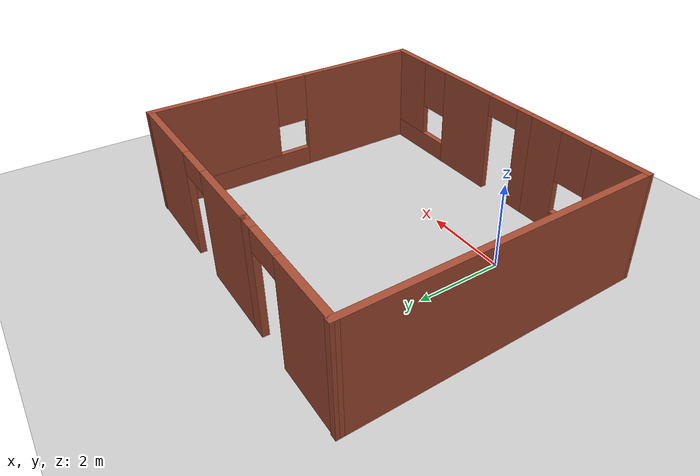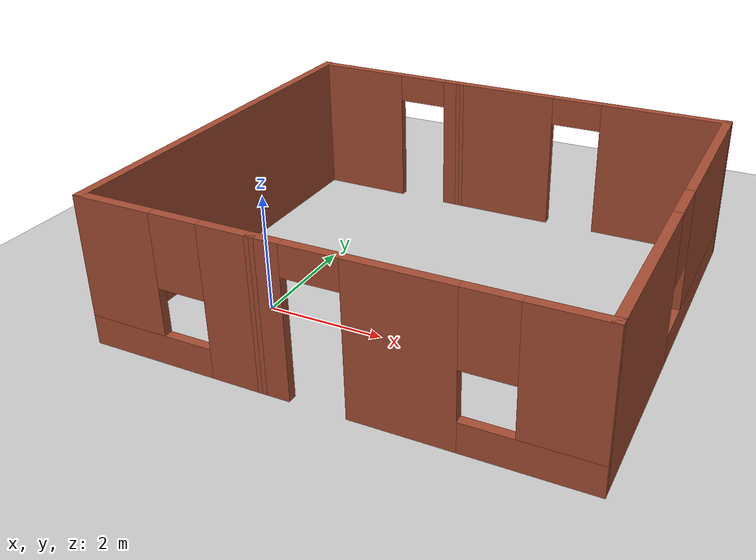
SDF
<sdf version="1.7">
 <world name="default">
  <light name="sun" type="directional">
   <pose>0 0 10 0 -0 0</pose>
   <diffuse>0.8 0.8 0.8 1</diffuse>
   <specular>0.2 0.2 0.2 1</specular>
   <attenuation>
    <range>1000</range>
    <constant>0.9</constant>
    <linear>0.01</linear>
    <quadratic>0.001</quadratic>
   </attenuation>
   <direction>-0.5 0.1 -0.9</direction>
   <spot><inner_angle>0</inner_angle><outer_angle>0</outer_angle><falloff>0</falloff></spot>
  </light>
  <model name="ground_plane">
   <static>1</static>
   <link name="link">
    <collision name="collision">
     <geometry><plane><normal>0 0 1</normal><size>100 100</size></plane></geometry>
     <surface>
      <contact><collide_bitmask>65535</collide_bitmask></contact>
      <friction><ode><mu>100</mu><mu2>50</mu2></ode></friction>
     </surface>
    </collision>
    <visual name="visual">
     <cast_shadows>0</cast_shadows>
     <geometry><plane><normal>0 0 1</normal><size>100 100</size></plane></geometry>
     <material>
      <script><uri>file://media/materials/scripts/gazebo.material</uri><name>Gazebo/Grey</name></script>
     </material>
    </visual>
   </link>
  </model>
  <gravity>0 0 -9.8</gravity>
  <magnetic_field>6e-06 2.3e-05 -4.2e-05</magnetic_field>
  <atmosphere type="adiabatic"/>
  <physics type="ode">
   <max_step_size>0.001</max_step_size>
   <real_time_factor>1</real_time_factor>
   <real_time_update_rate>1000</real_time_update_rate>
  </physics>
  <scene><ambient>0.4 0.4 0.4 1</ambient><background>0.7 0.7 0.7 1</background><shadows>1</shadows></scene>
  <audio><device>default</device></audio>
  <spherical_coordinates>
   <surface_model>EARTH_WGS84</surface_model>
   <latitude_deg>0</latitude_deg>
   <longitude_deg>0</longitude_deg>
   <elevation>0</elevation>
   <heading_deg>0</heading_deg>
  </spherical_coordinates>
  <light name="user_directional_light_0" type="directional">
   <pose>6.40994 6.29295 1 0 -0 0</pose>
   <diffuse>0.5 0.5 0.5 1</diffuse>
   <specular>0.1 0.1 0.1 1</specular>
   <direction>0.1 0.1 -0.9</direction>
   <attenuation>
    <range>20</range>
    <constant>0.5</constant>
    <linear>0.01</linear>
    <quadratic>0.001</quadratic>
   </attenuation>
   <spot><inner_angle>0</inner_angle><outer_angle>0</outer_angle><falloff>0</falloff></spot>
  </light>
  <light name="user_directional_light_1" type="directional">
   <pose>6.42464 6.4272 1 0 -0 0</pose>
   <diffuse>0.5 0.5 0.5 1</diffuse>
   <specular>0.1 0.1 0.1 1</specular>
   <direction>0.1 0.1 -0.9</direction>
   <attenuation>
    <range>20</range>
    <constant>0.5</constant>
    <linear>0.01</linear>
    <quadratic>0.001</quadratic>
   </attenuation>
   <spot><inner_angle>0</inner_angle><outer_angle>0</outer_angle><falloff>0</falloff></spot>
  </light>
  <light name="user_directional_light_2" type="directional">
   <pose>6.43772 6.4534 1 0 -0 0</pose>
   <diffuse>0.5 0.5 0.5 1</diffuse>
   <specular>0.1 0.1 0.1 1</specular>
   <direction>0.1 0.1 -0.9</direction>
   <attenuation>
    <range>20</range>
    <constant>0.5</constant>
    <linear>0.01</linear>
    <quadratic>0.001</quadratic>
   </attenuation>
   <spot><inner_angle>0</inner_angle><outer_angle>0</outer_angle><falloff>0</falloff></spot>
  </light>
  <model name="bulding1">
   <pose>2.1585 1.5294 0 0 -0 1.57205</pose>
   <link name="Wall_0">
    <pose>-3.44272 -1.46402 0 0 -0 -1.56993</pose>
    <visual name="Wall_0_Visual_0">
     <pose>-2.2636 0 1.25 0 -0 0</pose>
     <geometry><box><size>0.520091 0.15 2.5</size></box></geometry>
     <material>
      <script><uri>file://media/materials/scripts/gazebo.material</uri><name>Gazebo/Bricks</name></script>
      <ambient>1 1 1 1</ambient>
     </material>
     <meta><layer>0</layer></meta>
    </visual>
    <collision name="Wall_0_Collision_0">
     <geometry><box><size>0.520091 0.15 2.5</size></box></geometry>
     <pose>-2.2636 0 1.25 0 -0 0</pose>
    </collision>
    <visual name="Wall_0_Visual_1">
     <pose>-0.28602 0 1.25 0 -0 0</pose>
     <geometry><box><size>1.63507 0.15 2.5</size></box></geometry>
     <material>
      <script><uri>file://media/materials/scripts/gazebo.material</uri><name>Gazebo/Bricks</name></script>
      <ambient>1 1 1 1</ambient>
     </material>
     <meta><layer>0</layer></meta>
    </visual>
    <collision name="Wall_0_Collision_1">
     <geometry><box><size>1.63507 0.15 2.5</size></box></geometry>
     <pose>-0.28602 0 1.25 0 -0 0</pose>
    </collision>
    <visual name="Wall_0_Visual_2">
     <pose>1.52758 0 0.25 0 -0 0</pose>
     <geometry><box><size>1.99213 0.15 0.5</size></box></geometry>
     <material>
      <script><uri>file://media/materials/scripts/gazebo.material</uri><name>Gazebo/Bricks</name></script>
      <ambient>1 1 1 1</ambient>
     </material>
     <meta><layer>0</layer></meta>
    </visual>
    <collision name="Wall_0_Collision_2">
     <geometry><box><size>1.99213 0.15 0.5</size></box></geometry>
     <pose>1.52758 0 0.25 0 -0 0</pose>
    </collision>
    <visual name="Wall_0_Visual_3">
     <pose>1.92758 0 1.5 0 -0 0</pose>
     <geometry><box><size>1.19213 0.15 2</size></box></geometry>
     <material>
      <script><uri>file://media/materials/scripts/gazebo.material</uri><name>Gazebo/Bricks</name></script>
      <ambient>1 1 1 1</ambient>
     </material>
     <meta><layer>0</layer></meta>
    </visual>
    <collision name="Wall_0_Collision_3">
     <geometry><box><size>1.19213 0.15 2</size></box></geometry>
     <pose>1.92758 0 1.5 0 -0 0</pose>
    </collision>
    <visual name="Wall_0_Visual_4">
     <pose>0.931514 0 1.9 0 -0 0</pose>
     <geometry><box><size>0.8 0.15 1.2</size></box></geometry>
     <material>
      <script><uri>file://media/materials/scripts/gazebo.material</uri><name>Gazebo/Bricks</name></script>
      <ambient>1 1 1 1</ambient>
     </material>
     <meta><layer>0</layer></meta>
    </visual>
    <collision name="Wall_0_Collision_4">
     <geometry><box><size>0.8 0.15 1.2</size></box></geometry>
     <pose>0.931514 0 1.9 0 -0 0</pose>
    </collision>
    <visual name="Wall_0_Visual_5">
     <pose>-1.55355 0 2.25 0 -0 0</pose>
     <geometry><box><size>0.9 0.15 0.5</size></box></geometry>
     <material>
      <script><uri>file://media/materials/scripts/gazebo.material</uri><name>Gazebo/Bricks</name></script>
      <ambient>1 1 1 1</ambient>
     </material>
     <meta><layer>0</layer></meta>
    </visual>
    <collision name="Wall_0_Collision_5">
     <geometry><box><size>0.9 0.15 0.5</size></box></geometry>
     <pose>-1.55355 0 2.25 0 -0 0</pose>
    </collision>
   </link>
   <link name="Wall_1">
    <pose>-0.002366 -3.91265 0 0 -0 0</pose>
    <visual name="Wall_1_Visual_0">
     <pose>-1.95104 0 1.25 0 -0 0</pose>
     <geometry><box><size>3.09793 0.15 2.5</size></box></geometry>
     <material>
      <script><uri>file://media/materials/scripts/gazebo.material</uri><name>Gazebo/Bricks</name></script>
      <ambient>1 1 1 1</ambient>
     </material>
     <meta><layer>0</layer></meta>
    </visual>
    <collision name="Wall_1_Collision_0">
     <geometry><box><size>3.09793 0.15 2.5</size></box></geometry>
     <pose>-1.95104 0 1.25 0 -0 0</pose>
    </collision>
    <visual name="Wall_1_Visual_1">
     <pose>1.54896 0 0.25 0 -0 0</pose>
     <geometry><box><size>3.90207 0.15 0.5</size></box></geometry>
     <material>
      <script><uri>file://media/materials/scripts/gazebo.material</uri><name>Gazebo/Bricks</name></script>
      <ambient>1 1 1 1</ambient>
     </material>
     <meta><layer>0</layer></meta>
    </visual>
    <collision name="Wall_1_Collision_1">
     <geometry><box><size>3.90207 0.15 0.5</size></box></geometry>
     <pose>1.54896 0 0.25 0 -0 0</pose>
    </collision>
    <visual name="Wall_1_Visual_2">
     <pose>1.94896 0 1.5 0 -0 0</pose>
     <geometry><box><size>3.10207 0.15 2</size></box></geometry>
     <material>
      <script><uri>file://media/materials/scripts/gazebo.material</uri><name>Gazebo/Bricks</name></script>
      <ambient>1 1 1 1</ambient>
     </material>
     <meta><layer>0</layer></meta>
    </visual>
    <collision name="Wall_1_Collision_2">
     <geometry><box><size>3.10207 0.15 2</size></box></geometry>
     <pose>1.94896 0 1.5 0 -0 0</pose>
    </collision>
    <visual name="Wall_1_Visual_3">
     <pose>-0.002074 0 1.9 0 -0 0</pose>
     <geometry><box><size>0.8 0.15 1.2</size></box></geometry>
     <material>
      <script><uri>file://media/materials/scripts/gazebo.material</uri><name>Gazebo/Bricks</name></script>
      <ambient>1 1 1 1</ambient>
     </material>
     <meta><layer>0</layer></meta>
    </visual>
    <collision name="Wall_1_Collision_3">
     <geometry><box><size>0.8 0.15 1.2</size></box></geometry>
     <pose>-0.002074 0 1.9 0 -0 0</pose>
    </collision>
   </link>
   <link name="Wall_2">
    <pose>3.40728 -1.46402 0 0 -0 1.57167</pose>
    <visual name="Wall_2_Visual_0">
     <pose>-1.40387 0 1.25 0 -0 0</pose>
     <geometry><box><size>2.23955 0.15 2.5</size></box></geometry>
     <material>
      <script><uri>file://media/materials/scripts/gazebo.material</uri><name>Gazebo/Bricks</name></script>
      <ambient>1 1 1 1</ambient>
     </material>
     <meta><layer>0</layer></meta>
    </visual>
    <collision name="Wall_2_Collision_0">
     <geometry><box><size>2.23955 0.15 2.5</size></box></geometry>
     <pose>-1.40387 0 1.25 0 -0 0</pose>
    </collision>
    <visual name="Wall_2_Visual_1">
     <pose>1.56977 0 1.25 0 -0 0</pose>
     <geometry><box><size>1.90774 0.15 2.5</size></box></geometry>
     <material>
      <script><uri>file://media/materials/scripts/gazebo.material</uri><name>Gazebo/Bricks</name></script>
      <ambient>1 1 1 1</ambient>
     </material>
     <meta><layer>0</layer></meta>
    </visual>
    <collision name="Wall_2_Collision_1">
     <geometry><box><size>1.90774 0.15 2.5</size></box></geometry>
     <pose>1.56977 0 1.25 0 -0 0</pose>
    </collision>
    <visual name="Wall_2_Visual_2">
     <pose>0.165904 0 2.25 0 -0 0</pose>
     <geometry><box><size>0.9 0.15 0.5</size></box></geometry>
     <material>
      <script><uri>file://media/materials/scripts/gazebo.material</uri><name>Gazebo/Bricks</name></script>
      <ambient>1 1 1 1</ambient>
     </material>
     <meta><layer>0</layer></meta>
    </visual>
    <collision name="Wall_2_Collision_2">
     <geometry><box><size>0.9 0.15 0.5</size></box></geometry>
     <pose>0.165904 0 2.25 0 -0 0</pose>
    </collision>
   </link>
   <link name="Wall_4">
    <pose>-3.4348 2.44836 0 0 -0 1.56393</pose>
    <visual name="Wall_4_Visual_0">
     <pose>-1.07248 0 1.25 0 -0 0</pose>
     <geometry><box><size>0.932808 0.15 2.5</size></box></geometry>
     <material>
      <script><uri>file://media/materials/scripts/gazebo.material</uri><name>Gazebo/Bricks</name></script>
      <ambient>1 1 1 1</ambient>
     </material>
     <meta><layer>0</layer></meta>
    </visual>
    <collision name="Wall_4_Collision_0">
     <geometry><box><size>0.932808 0.15 2.5</size></box></geometry>
     <pose>-1.07248 0 1.25 0 -0 0</pose>
    </collision>
    <visual name="Wall_4_Visual_1">
     <pose>0.466404 0 0.25 0 -0 0</pose>
     <geometry><box><size>2.14496 0.15 0.5</size></box></geometry>
     <material>
      <script><uri>file://media/materials/scripts/gazebo.material</uri><name>Gazebo/Bricks</name></script>
      <ambient>1 1 1 1</ambient>
     </material>
     <meta><layer>0</layer></meta>
    </visual>
    <collision name="Wall_4_Collision_1">
     <geometry><box><size>2.14496 0.15 0.5</size></box></geometry>
     <pose>0.466404 0 0.25 0 -0 0</pose>
    </collision>
    <visual name="Wall_4_Visual_2">
     <pose>0.866404 0 1.5 0 -0 0</pose>
     <geometry><box><size>1.34496 0.15 2</size></box></geometry>
     <material>
      <script><uri>file://media/materials/scripts/gazebo.material</uri><name>Gazebo/Bricks</name></script>
      <ambient>1 1 1 1</ambient>
     </material>
     <meta><layer>0</layer></meta>
    </visual>
    <collision name="Wall_4_Collision_2">
     <geometry><box><size>1.34496 0.15 2</size></box></geometry>
     <pose>0.866404 0 1.5 0 -0 0</pose>
    </collision>
    <visual name="Wall_4_Visual_3">
     <pose>-0.206078 0 1.9 0 -0 0</pose>
     <geometry><box><size>0.8 0.15 1.2</size></box></geometry>
     <material>
      <script><uri>file://media/materials/scripts/gazebo.material</uri><name>Gazebo/Bricks</name></script>
      <ambient>1 1 1 1</ambient>
     </material>
     <meta><layer>0</layer></meta>
    </visual>
    <collision name="Wall_4_Collision_3">
     <geometry><box><size>0.8 0.15 1.2</size></box></geometry>
     <pose>-0.206078 0 1.9 0 -0 0</pose>
    </collision>
   </link>
   <link name="Wall_5">
    <collision name="Wall_5_Collision">
     <geometry><box><size>7 0.15 2.5</size></box></geometry>
     <pose>0 0 1.25 0 -0 0</pose>
    </collision>
    <visual name="Wall_5_Visual">
     <pose>0 0 1.25 0 -0 0</pose>
     <geometry><box><size>7 0.15 2.5</size></box></geometry>
     <material>
      <script><uri>file://media/materials/scripts/gazebo.material</uri><name>Gazebo/Bricks</name></script>
      <ambient>1 1 1 1</ambient>
     </material>
     <meta><layer>0</layer></meta>
    </visual>
    <pose>0.020371 3.91211 0 0 -0 0</pose>
   </link>
   <link name="Wall_6">
    <pose>3.4152 2.44836 0 0 -0 -1.57767</pose>
    <visual name="Wall_6_Visual_0">
     <pose>-0.650215 0 1.25 0 -0 0</pose>
     <geometry><box><size>1.77734 0.15 2.5</size></box></geometry>
     <material>
      <script><uri>file://media/materials/scripts/gazebo.material</uri><name>Gazebo/Bricks</name></script>
      <ambient>1 1 1 1</ambient>
     </material>
     <meta><layer>0</layer></meta>
    </visual>
    <collision name="Wall_6_Collision_0">
     <geometry><box><size>1.77734 0.15 2.5</size></box></geometry>
     <pose>-0.650215 0 1.25 0 -0 0</pose>
    </collision>
    <visual name="Wall_6_Visual_1">
     <pose>1.33867 0 1.25 0 -0 0</pose>
     <geometry><box><size>0.40043 0.15 2.5</size></box></geometry>
     <material>
      <script><uri>file://media/materials/scripts/gazebo.material</uri><name>Gazebo/Bricks</name></script>
      <ambient>1 1 1 1</ambient>
     </material>
     <meta><layer>0</layer></meta>
    </visual>
    <collision name="Wall_6_Collision_1">
     <geometry><box><size>0.40043 0.15 2.5</size></box></geometry>
     <pose>1.33867 0 1.25 0 -0 0</pose>
    </collision>
    <visual name="Wall_6_Visual_2">
     <pose>0.688456 0 2.25 0 -0 0</pose>
     <geometry><box><size>0.9 0.15 0.5</size></box></geometry>
     <material>
      <script><uri>file://media/materials/scripts/gazebo.material</uri><name>Gazebo/Bricks</name></script>
      <ambient>1 1 1 1</ambient>
     </material>
     <meta><layer>0</layer></meta>
    </visual>
    <collision name="Wall_6_Collision_2">
     <geometry><box><size>0.9 0.15 0.5</size></box></geometry>
     <pose>0.688456 0 2.25 0 -0 0</pose>
    </collision>
   </link>
   <static>1</static>
  </model>
  <light name="user_directional_light_3" type="directional">
   <pose>8.32629 6.72635 1 0 -0 0</pose>
   <diffuse>0.5 0.5 0.5 1</diffuse>
   <specular>0.1 0.1 0.1 1</specular>
   <direction>0.1 0.1 -0.9</direction>
   <attenuation>
    <range>20</range>
    <constant>0.5</constant>
    <linear>0.01</linear>
    <quadratic>0.001</quadratic>
   </attenuation>
  </light>
  <light name="user_directional_light_4" type="directional">
   <pose>6.73814 6.7718 1 0 -0 0</pose>
   <diffuse>0.5 0.5 0.5 1</diffuse>
   <specular>0.1 0.1 0.1 1</specular>
   <direction>0.1 0.1 -0.9</direction>
   <attenuation>
    <range>20</range>
    <constant>0.5</constant>
    <linear>0.01</linear>
    <quadratic>0.001</quadratic>
   </attenuation>
  </light>
 </world>
</sdf>
